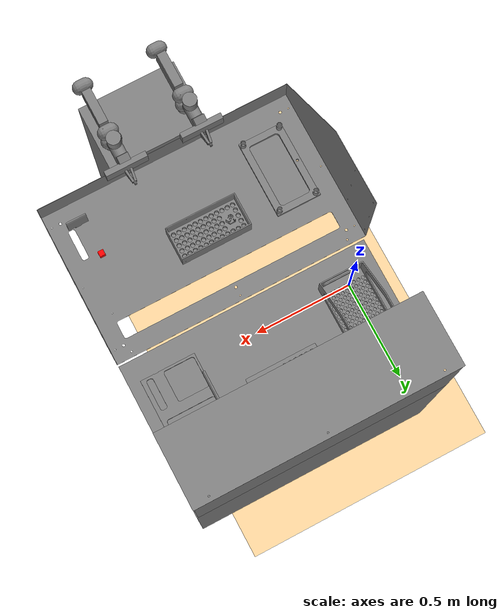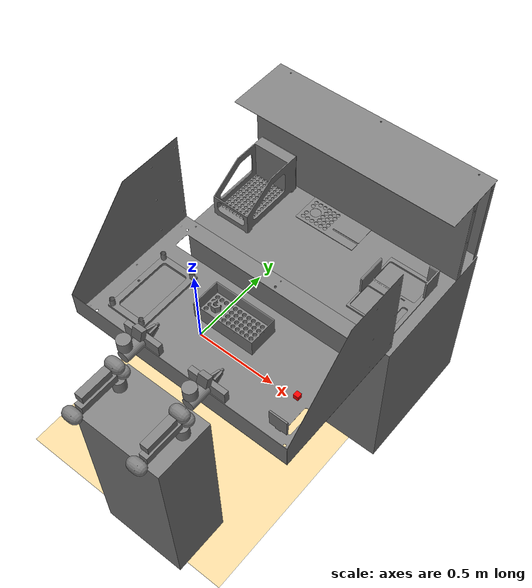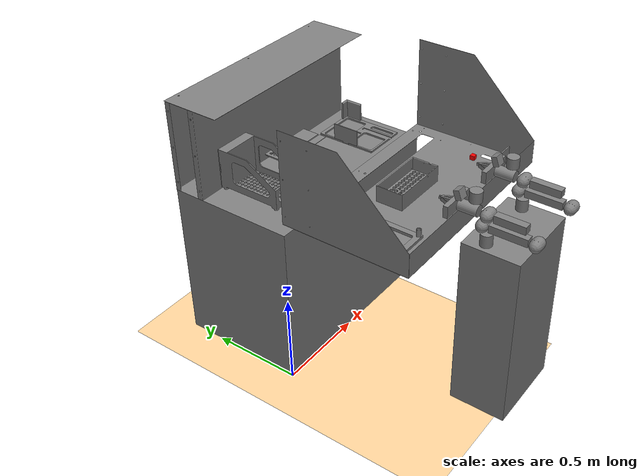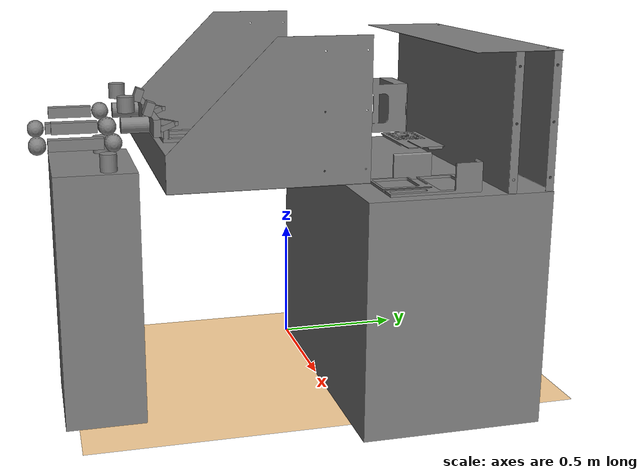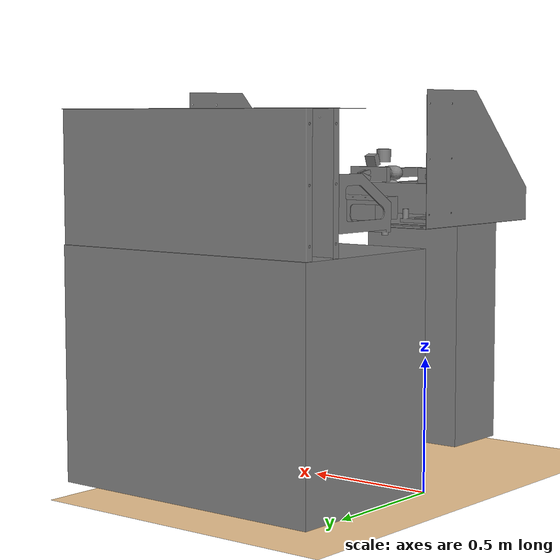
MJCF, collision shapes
<mujoco model="JONY_SOFI">

    <include file="wxai_follower_left.xml"/>
    <include file="wxai_follower_right.xml"/>
    <compiler angle="radian" meshdir="meshes" texturedir="" autolimits="true" eulerseq="XYZ"/>
    <asset>
        <mesh name="Table_Assy_Side_Plates_Right" file="Table_Assy_Side_Plates.stl" scale="0.001 0.001 0.001" />
        <mesh name="Table_Assy_Front_Weld_Plate" file="Table_Assy_Front_Weld_Plate.stl" scale="0.001 0.001 0.001" />
        <mesh name="Table_Assy_Top_Weld_Plate" file="Table_Assy_Top_Weld_Plate.stl" scale="0.001 0.001 0.001" />
        <mesh name="Table_Assy_Top_Panel" file="Table_Assy_Top_Panel.stl" scale="0.001 0.001 0.001" />
        <mesh name="Table_Assy_Rear_Panel" file="Table_Assy_Rear_Panel.stl" scale="0.001 0.001 0.001" />
        <mesh name="Table_Assy_Back_Plate_Exhaust" file="Table_Assy_Back_Plate_Exhaust.stl" scale="0.001 0.001 0.001" />
        <mesh name="Table_Assy_Side_Plates_Left" file="Table_Assy_Side_Plates.stl" scale="0.001 0.001 0.001" />
        <mesh name="Table_Assy_bottom_box" file="Table_Assy_bottom_box.stl" scale="0.001 0.001 0.001" />
        <mesh name="Table_Assy_Chute_01" file="Table_Assy_Chute_01.stl" scale="0.001 0.001 0.001" />
        <mesh name="Table_Assy_Chute_02" file="Table_Assy_Chute_02.stl" scale="0.001 0.001 0.001" />
        <mesh name="Table_Assy_Chute_03" file="Table_Assy_Chute_03.stl" scale="0.001 0.001 0.001" />
        <mesh name="Table_Assy_Vibration_Table_Plate" file="Table_Assy_Vibration_Table_Plate.stl" scale="0.001 0.001 0.001" />
        <mesh name="Table_Assy_Vibration_Table_Top_Plate" file="Table_Assy_Vibration_Table_Top_Plate.stl" scale="0.001 0.001 0.001" />
        <mesh name="Table_Assy_Vibration_Table_Cover" file="Table_Assy_Vibration_Table_Cover.stl" scale="0.001 0.001 0.001" />
        <mesh name="Table_Assy_Mail_Spreader_Housing" file="Table_Assy_Mail_Spreader_Housing.stl" scale="0.001 0.001 0.001" />
        <mesh name="Table_Assy_M0_Top_Plate" file="Table_Assy_M0_Top_Plate.stl" scale="0.001 0.001 0.001" />
        <mesh name="Table_Assy_pedestal" file="Table_Assy_pedestal.stl" scale="0.001 0.001 0.001" />
    </asset>
    <worldbody>
        <body name="box" pos="1.0 -0.4375 0.99">
            <joint name="red_box_joint" type="free" frictionloss="0.01"/>
            <inertial pos="0 0 0" mass="0.05" diaginertia="0.002 0.002 0.002"/>
            <geom condim="4" solimp="2 1 0.01" solref="0.01 1" friction="5.0 4 0.01" pos="0 0 0" size="0.0125 0.0125 0.0125" type="box" name="red_box" rgba="1 0 0 1"/>
        </body>
        <light directional="true" pos="-0.5 0.5 3" dir="0 0 -1" />
        <geom pos="0 0 0" size="1 1 1" type="plane" rgba="1 0.83 0.61 0.5" />
        <body name="Table_Assy_bottom_box" pos="0.5755000000000605 0.3473000000001488 0.8999990000000722" euler="1.5707963267948961 2.595146320061305e-14 1.5707963267948952">
            <geom name="Table_Assy_bottom_box_geom" type="mesh" mesh="Table_Assy_bottom_box" pos="0 0 0" euler="0 0 0" />
            <inertial mass="6094.645799999998" pos="-0.6953000000001242 -0.41499900000008083 0.0034999999999523633" fullinertia="1149.5517753099984 917.709417529398 723.8996810894064 -8.04561847010338e-13 -1.011885098422144e-12 -1.1317166151346369e-13" />
            <body name="Table_Assy_Top_Panel" pos="-1.2235545909788924e-13 0.0015009999999182355 -4.7535309022350705e-14" euler="-3.4512664603419266e-30 -6.399296456966153e-29 3.1415926535897922">
                <geom name="Table_Assy_Top_Panel_geom" type="mesh" mesh="Table_Assy_Top_Panel" pos="0 0 0" euler="0 0 0" />
                <inertial mass="8.638872154823748" pos="0.7190215741395722 -0.0692499999999999 -0.0012508128329555876" fullinertia="0.9774087280735442 1.3107669382962617 0.3333614497997832 3.4836552541797617e-16 0.0035484777358658157 4.0782870391147253e-16" />
                <body name="Table_Assy_Side_Plates_Right" pos="1.6342482922482305e-15 1.0000000349918992e-06 1.1525000000000007" euler="-5.845945338624161e-14 1.2246467991473505e-16 0.0">
                    <geom name="Table_Assy_Side_Plates_geom_Right" type="mesh" mesh="Table_Assy_Side_Plates_Right" pos="0 0 0" euler="0 0 0" />
                    <inertial mass="3.3502178875867004" pos="0.6388405733819212 -0.28872222393639935 -0.5747500000000175" fullinertia="0.06425169768167785 0.1107467819837871 0.1749972233337589 -0.02615578684520504 -2.116247646434897e-15 -3.755624807565803e-15" />
                    <body name="Table_Assy_Top_Weld_Plate" pos="-0.18630000000000024 -0.4999999999999672 -1.1525000000000316" euler="-5.860174503637766e-14 -1.224646799147352e-16 -3.141592653589793">
                        <geom name="Table_Assy_Top_Weld_Plate_geom" type="mesh" mesh="Table_Assy_Top_Weld_Plate" pos="0 0 0" euler="0 0 0" />
                        <inertial mass="4.4985571793770145" pos="-0.6945640289089043 0.07074999999999991 0.0015000000000001932" fullinertia="0.4991204499510249 0.5386936217373994 0.039574858745320185 4.424895953323975e-17 -1.0343462673326475e-16 -7.896400763377244e-17" />
                        <body name="Table_Assy_Rear_Panel" pos="-0.015000500000039026 -0.2500000000000023 0.0015000000000000568" euler="3.1415926535897243 -3.2789020283935527e-15 -1.5707963267948966">
                            <geom name="Table_Assy_Rear_Panel_geom" type="mesh" mesh="Table_Assy_Rear_Panel" pos="0 0 0" euler="0 0 0" />
                            <inertial mass="7.256241530272004" pos="-0.06999285631849932 0.6944806568110542 -0.0015160732834409434" fullinertia="0.8782510928163023 1.0292714099498879 0.15124404386700974 -3.9879893758765364e-08 -2.5659790955783006e-05 8.97297484879914e-08" />
                        </body>
                    </body>
                </body>
                <body name="Table_Assy_Side_Plates_Left" pos="1.4210854715202005e-15 9.99999974169441e-07 2.842170943040401e-16" euler="4.66017437726886e-14 1.2246467991473505e-16 0.0">
                    <geom name="Table_Assy_Side_Plates_geom_Left" type="mesh" mesh="Table_Assy_Side_Plates_Left" pos="0 0 0" euler="0 0 0" />
                    <inertial mass="3.3502178875867004" pos="0.6388405733819212 -0.28872222393639935 -0.5747500000000176" fullinertia="0.06425169768167607 0.11074678198378576 0.17499722333375622 -0.026155786845205708 -1.6391508181145328e-15 -3.8831414227272846e-15" />
                    <body name="Table_Assy_Front_Weld_Plate" pos="0.3487999999999999 -0.06370099999997379 2.913225216616411e-15" euler="-1.2449265467706876e-16 4.654001112840015e-14 1.5707963267948966">
                        <geom name="Table_Assy_Front_Weld_Plate_geom" type="mesh" mesh="Table_Assy_Front_Weld_Plate" pos="0 0 0" euler="0 0 0" />
                        <inertial mass="1.7596488000000674" pos="-0.07000000000000003 -0.6937499999999992 0.001499999999999872" fullinertia="0.1942657040915568 0.19664541060383095 0.0023803663805748165 -6.410164538511883e-17 9.713094994293897e-17 7.918656996933371e-17" />
                    </body>
                    <body name="Table_Assy_Back_Plate_Exhaust" pos="-0.34580000000006583 -0.24999999999989966 -0.0015000000000190284" euler="3.141592653589793 -4.598765316290481e-14 -1.5707963267948966">
                        <geom name="Table_Assy_Back_Plate_Exhaust_geom" type="mesh" mesh="Table_Assy_Back_Plate_Exhaust" pos="0 0 0" euler="0 0 0" />
                        <inertial mass="7.23847714972074" pos="0.07000000000005516 -0.6945212312801704 -0.0015000000000114381" fullinertia="0.871759217503979 1.022415953228518 0.1508804347156314 4.8717935802377165e-15 -2.1847117415221623e-13 2.7777826006639775e-16" />
                    </body>
                </body>
                <body name="Table_Assy_Vibration_Table_Plate" pos="0.0671797496661021 1.2789769243681803e-15 -0.3934526870424287" euler="-3.141592653589793 1.570796326794895 0">
                    <geom name="Table_Assy_Vibration_Table_Plate_geom" type="mesh" mesh="Table_Assy_Vibration_Table_Plate" pos="0 0 0" euler="0 0 0" />
                    <inertial mass="0.5560141130264266" pos="-0.0017174812182112515 0.08403090037165499 -0.6945003713058735" fullinertia="0.00952429496345697 0.012758835493488638 0.003437097044428735 -7.897336272851581e-07 1.7628963325757758e-08 -1.3483128515555627e-09" />
                </body>
                <body name="Table_Assy_Mail_Spreader_Housing" pos="-0.02811509086870764 -0.014999999999999859 -0.011423451027591867" euler="-2.6806732293762493e-15 -7.097787474020157e-14 -3.1415926535897922">
                    <geom name="Table_Assy_Mail_Spreader_Housing_geom" type="mesh" mesh="Table_Assy_Mail_Spreader_Housing" pos="0 0 0" euler="0 0 0" />
                    <inertial mass="0.9679744461417281" pos="-0.6945473934186863 0.08053240969431215 -0.005649995800602575" fullinertia="0.01087212481692211 0.01296232842989235 0.0032294985478567026 6.586091191313066e-07 -4.483149662973115e-06 -9.84994673766279e-06" />
                    <body name="Table_Assy_M0_Top_Plate" pos="8.526512829121202e-16 0.07449999999999989 7.105427357601002e-17" euler="3.141592653589793 3.4931790098873376e-30 -3.141592653589793">
                        <geom name="Table_Assy_M0_Top_Plate_geom" type="mesh" mesh="Table_Assy_M0_Top_Plate" pos="0 0 0" euler="0 0 0" />
                        <inertial mass="0.1465485002491547" pos="0.6910338198166185 0.07003468746243091 -0.006178289634212963" fullinertia="0.0013863056088074715 0.0017429196396757571 0.0003593992506941225 -1.8593354955243816e-06 -5.463950548351251e-05 7.606712999386254e-06" />
                    </body>
                </body>
                <body name="Table_Assy_Chute_01" pos="0.08082437029044659 -1.4210854715202004e-16 0.400999999999965" euler="3.1415926535897922 -1.5707963267948946 0">
                    <geom name="Table_Assy_Chute_01_geom" type="mesh" mesh="Table_Assy_Chute_01" pos="0 0 0" euler="0 0 0" />
                    <inertial mass="0.40162002519738565" pos="0.05772619690397901 0.09360286537352258 0.6484517705304826" fullinertia="0.005361750452761825 0.007420254096579313 0.002829995039988406 -0.0004265341319401823 0.000835543411297146 0.0006737716338254691" />
                    <body name="Table_Assy_Chute_02" pos="-0.11450000000000003 0.024999999999999148 -1.0658141036401502e-16" euler="-1.3355885970713252e-15 -1.5707963267948966 0">
                        <geom name="Table_Assy_Chute_02_geom" type="mesh" mesh="Table_Assy_Chute_02" pos="0 0 0" euler="0 0 0" />
                        <inertial mass="0.13589450417228027" pos="0.6944999999999989 0.09839987365202225 0.0035459915582183995" fullinertia="9.509060396251077e-05 0.0002510152481522414 0.0003438571436064908 -2.5784920687517184e-18 -1.5487577024099385e-19 -2.7953203965435524e-07" />
                    </body>
                    <body name="Table_Assy_Chute_03" pos="0.052250197846483104 0.02499999999999986 0.172" euler="3.141592653589793 1.2246467991469063e-16 3.1415926535897905">
                        <geom name="Table_Assy_Chute_03_geom" type="mesh" mesh="Table_Assy_Chute_03" pos="0 0 0" euler="0 0 0" />
                        <inertial mass="0.08184450417228083" pos="-0.0014999999999985546 0.0982192038653607 -0.6895458185926816" fullinertia="5.776613298771882e-05 5.4695778536020676e-05 0.00011110755509358109 1.387012602456787e-17 -6.97001207037056e-18 1.6839673550891387e-07" />
                    </body>
                </body>
            </body>
            <body name="Table_Assy_pedestal" pos="-0.05000000000000021 -9.947598300641404e-16 -3.552713678800501e-16" euler="-6.794064546215964e-29 9.989829047051058e-31 -1.180301514317687e-15">
                <geom name="Table_Assy_pedestal_geom" type="mesh" mesh="Table_Assy_pedestal" pos="0 0 0" euler="0 0 0" />
                <inertial mass="1045.1586555" pos="-1.1948000000001227 -0.4149990000000804 0.003499999999952306" fullinertia="99.82214512470406 25.86924446160875 89.94539583023197 -9.673379707214566e-14 1.0075912062680834e-13 -3.775674878662484e-14" />
            </body>
        </body>
        <body name="Table_Assy_Vibration_Table_Top_Plate" pos="0.182047312957584 0.28012025033392646 0.977700066093412" euler="-1.5707963267948697 -8.073498326871293e-30 -3.1415926535897927">
            <geom name="Table_Assy_Vibration_Table_Top_Plate_geom" type="mesh" mesh="Table_Assy_Vibration_Table_Top_Plate" pos="0 0 0" euler="0 0 0" />
            <inertial mass="1.6515666860958036" pos="-0.001499999999949385 -0.1474318920041807 0.6165682707926011" fullinertia="0.029214441885357267 0.028540995527042923 0.01795837144115288 -6.60940717647265e-15 -7.21118904986594e-15 -0.004676561117027137" />
            <body name="Table_Assy_Vibration_Table_Cover" pos="-7.105427357601002e-17 -0.09250000000000014 -0.17800000000000027" euler="-3.141592653589793 -1.5707963267948963 0">
                <geom name="Table_Assy_Vibration_Table_Cover_geom" type="mesh" mesh="Table_Assy_Vibration_Table_Cover" pos="0 0 0" euler="0 0 0" />
                <inertial mass="0.20545240091701503" pos="0.6994876714226026 0.05964733674038033 -0.0009966140869704541" fullinertia="0.0012723533214168965 0.0005704094333601356 0.0007159203050556839 1.6535157416413207e-05 -9.073985887462761e-07 5.996540858289918e-06" />
            </body>
        </body>
    </worldbody>
</mujoco>

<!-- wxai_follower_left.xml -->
<mujoco model="wxai_follower">
  <compiler angle="radian" meshdir="../meshes" texturedir="../" autolimits="true"/>

  <option integrator="implicitfast"/>

  <default>
    <default class="visual">
      <geom type="mesh" group="2" contype="0" conaffinity="0" material="trossen_black"/>
    </default>
    <default class="collision">
      <geom type="cylinder" group="3" mass="0" density="0"/>
    </default>
  </default>

  <asset>
    <material name="trossen_black" rgba="0.1 0.1 0.1 1"/>

    <mesh name="base_link" file="base_link.stl"/>
    <mesh name="link_1" file="link_1.stl"/>
    <mesh name="link_2" file="link_2.stl"/>
    <mesh name="link_3" file="link_3.stl"/>
    <mesh name="link_4" file="link_4.stl"/>
    <mesh name="link_5" file="link_5.stl"/>
    <mesh name="link_6" file="link_6.stl"/>
    <mesh name="carriage_right" file="carriage_right.stl"/>
    <mesh name="carriage_left" file="carriage_left.stl"/>
    <mesh name="camera_mount_d405" file="camera_mount_d405.stl"/>
    <mesh name="d405" file="d405.stl" scale="0.001 0.001 0.001"/>
    <mesh name="gripper_left" file="gripper_left.stl"/>
    <mesh name="gripper_right" file="gripper_right.stl"/>
  </asset>

  <worldbody>
    <body name="base_link" pos="0.75 -0.847 0.97" quat="0.707 0 0 0.707" gravcomp="1">
      <inertial pos="-0.00014175 -5.228e-05 0.03175177" quat="0.503748 -0.507380 -0.494230 -0.494510" mass="0.45969858" diaginertia="0.000213926 0.000416701 0.000448963"/>
      <geom class="visual" mesh="base_link"/>
      <geom class="collision" type="cylinder" size="0.031 0.0325" pos="0 0 0.0325" quat="1 0 0 0"/>
      <body name="link_1" pos="0 0 0.05725" gravcomp="1">
        <inertial pos="-0.00011075 0.00171176 0.0204459" quat="0.313955 0.305238 -0.643575 0.627752" mass="0.152704" diaginertia="0.000203432 0.000173907 8.3521e-05"/>
        <joint name="joint_0" pos="0 0 0" axis="0 0 1" range="-3.05433 3.05433" armature="0.032" frictionloss="0.1" actuatorgravcomp="true"/>
        <geom class="visual" mesh="link_1"/>
        <body name="link_2" pos="0.02 0 0.04625" gravcomp="1">
          <inertial pos="-0.131215 -0.00292583 0.00021345" quat="-0.00123582 0.706546 -0.00109575 0.707665" mass="1.15316" diaginertia="0.0179449 0.0173612 0.00102628"/>
          <joint name="joint_1" pos="0 0 0" axis="0 1 0" range="0 3.14159" armature="0.032" frictionloss="0.1" actuatorgravcomp="true"/>
          <geom class="visual" mesh="link_2"/>
          <geom class="collision" type="capsule" size="0.031 0.015" pos="0 0 0" quat="1 1 0 0"/>
          <geom class="collision" type="box" size="0.0975 0.02 0.02" pos="-0.131 0 0" quat="1 0 0 0"/>
          <body name="link_3" pos="-0.264 0 0" gravcomp="1">
            <inertial pos="0.180836 -0.0009409 0.0555494" quat="0.0103901 0.669684 -0.0033175 0.742566" mass="0.686666" diaginertia="0.00566898 0.00547578 0.00059316"/>
            <joint name="joint_2" pos="0 0 0" axis="0 -1 0" range="0 2.35619" armature="0.032" frictionloss="0.1" actuatorgravcomp="true"/>
            <geom class="visual" mesh="link_3"/>
            <geom class="collision" type="capsule" size="0.031 0.015" pos="0 0 0" quat="1 1 0 0"/>
            <geom class="collision" type="box" size="0.08 0.02 0.02" pos="0.13 0 0.06" quat="1 0 0 0"/>
            <body name="link_4" pos="0.245 0 0.06" gravcomp="1">
              <inertial pos="0.0579784 0.00027145 0.0588445" quat="0.948688 0.0346237 0.307828 0.0635164" mass="0.457899" diaginertia="0.000670827 0.000661455 0.000288648"/>
              <joint name="joint_3" pos="0 0 0" axis="0 -1 0" range="-1.5708 1.5708" armature="0.0018" frictionloss="0.1" actuatorgravcomp="true"/>
              <geom class="visual" mesh="link_4"/>
              <geom class="collision" type="capsule" size="0.031 0.015" pos="0 0 0" quat="1 1 0 0"/>
              <body name="link_5" pos="0.06775 0 0.0455" gravcomp="1">
                <inertial pos="0.00412447 -1.138e-05 -0.0428318" quat="0.496144 0.502128 0.503595 0.498098" mass="0.366939" diaginertia="0.000320622 0.00026751 0.000189108"/>
                <joint name="joint_4" pos="0 0 0" axis="0 0 -1" range="-1.5708 1.5708" armature="0.0018" frictionloss="0.1" actuatorgravcomp="true"/>
                <geom class="visual" mesh="link_5"/>
                <geom class="collision" type="cylinder" size="0.031 0.028" pos="0 0 0.03" quat="1 0 0 0"/>
                <body name="link_6" pos="0.02895 0 -0.0455" gravcomp="1">
                  <inertial pos="0.046841 0.00145133 0.00895674" quat="0.275854 0.291255 -0.691957 0.600225" mass="0.671874" diaginertia="0.00118316 0.00110863 0.00078309"/>
                  <joint name="joint_5" pos="0 0 0" axis="1 0 0" range="-3.14159 3.14159" armature="0.0018" frictionloss="0.1" actuatorgravcomp="true"/>
                  <geom class="visual" mesh="link_6"/>
                  <geom class="collision" type="cylinder" size="0.029 0.05" pos="0 0 0" quat="1 0 1 0"/>
                  <geom class="collision" type="box" size="0.0125 0.094 0.031" pos="0.0685 0 0" quat="1 0 0 0"/>
                  <!-- End-effector site at gripper tip -->
                  <site name="ee_site" pos="0.156 0 0" size="0.001"/>
                  <geom class="visual" pos="0.012 0 0" quat="1 0 0 0" mesh="camera_mount_d405"/>
                  <geom class="collision" type="box" size="0.0155 0.025 0.025" pos="0.0513206 0 0.0569399" quat="0.984808 0 0.173648 0"/>
                  <geom class="visual" type="box" size="0.0115 0.021 0.021" pos="0.0513206 0 0.0569399" quat="0.984808 0 0.173648 0"/>
                  <site name="camera_color_frame" pos="0.05864 0.009 0.05427" quat="0.9848078 0 0.1736482 0" size="0.005"/>
                  <camera name="cam" pos="0.05864 0.009 0.05427" quat="0.5793 0.4056 -0.4056 -0.5793" mode="fixed" fovy="87"/>
                  <body name="carriage_right" pos="0.0865 -0.023 0" gravcomp="1">
                    <inertial pos="0.00169015 0.00592793 0.00201817" quat="-0.370973 0.740886 -0.0847721 0.553427" mass="0.081271" diaginertia="4.29565e-05 3.87081e-05 2.21528e-05"/>
                    <joint name="right_carriage_joint" pos="0 0 0" axis="0 -1 0" type="slide" range="0 0.044" armature="0.1" frictionloss="0.1" actuatorgravcomp="true"/>
                    <geom class="visual" mesh="carriage_right"/>
                    <geom class="visual" mesh="gripper_right"/>
                    <geom class="collision" type="box" size="0.0275 0.005 0.01" pos="0.0286 0.01436 0.0037" quat="0.99257 -0.00451 0.10246 0.06547"/>
                    <geom class="collision" type="box" size="0.0275 0.005 0.01" pos="0.0285 0.01429 -0.00973" quat="0.98344 0.0133 -0.16893 0.06427"/>
                    <geom class="collision" type="box" size="0.00732 0.00214 0.00767" pos="0.0622 0.02083 -0.00105" quat="1 0 0 0"/>
                  </body>
                  <body name="carriage_left" pos="0.0865 0.023 0" gravcomp="1">
                    <inertial pos="0.00169017 -0.00592796 -0.00365701" quat="-0.0382691 0.628022 -0.255101 0.734198" mass="0.081271" diaginertia="4.21112e-05 3.61943e-05 2.40003e-05"/>
                    <joint name="left_carriage_joint" pos="0 0 0" axis="0 1 0" type="slide" range="0 0.044" armature="0.1" frictionloss="0.1" actuatorgravcomp="true"/>
                    <geom class="visual" mesh="carriage_left"/>
                    <geom class="visual" mesh="gripper_left"/>
                    <geom class="collision" type="box" size="0.0275 0.005 0.01" pos="0.0286 -0.01436 0.0037" quat="0.99257 0.00451 0.10246 -0.06547"/>
                    <geom class="collision" type="box" size="0.0275 0.005 0.01" pos="0.0285 -0.01429 -0.00973" quat="0.98344 -0.0133 -0.16893 -0.06427"/>
                    <geom class="collision" type="box" size="0.00732 0.00214 0.00767" pos="0.0622 -0.02083 -0.00105" quat="1 0 0 0"/>
                  </body>
                </body>
              </body>
            </body>
          </body>
        </body>
      </body>
    </body>
  </worldbody>

  <equality>
    <joint joint1="right_carriage_joint" joint2="left_carriage_joint" polycoef="0 1 0 0 0"/>
  </equality>

  <actuator>
    <position name="joint_0" joint="joint_0" kp="200" kv="10" ctrlrange="-3.05433 3.05433" forcerange="-27 27"/>
    <position name="joint_1" joint="joint_1" kp="200" kv="10" ctrlrange="0 3.14159" forcerange="-27 27"/>
    <position name="joint_2" joint="joint_2" kp="200" kv="10" ctrlrange="0 2.35619" forcerange="-27 27"/>
    <position name="joint_3" joint="joint_3" kp="100" kv="5" ctrlrange="-1.5708 1.5708" forcerange="-7 7"/>
    <position name="joint_4" joint="joint_4" kp="50" kv="5" ctrlrange="-1.5708 1.5708" forcerange="-7 7"/>
    <position name="joint_5" joint="joint_5" kp="50" kv="5" ctrlrange="-3.14159 3.14159" forcerange="-7 7"/>
    <position name="left_gripper" joint="left_carriage_joint" kp="1000" kv="50" ctrlrange="0 0.044" forcerange="-400 400"/>
  </actuator>

  <keyframe>
    <key name="home" qpos="0 0 0 0 0 0 0 0" ctrl="0 0 0 0 0 0 0"/>
  </keyframe>
</mujoco>

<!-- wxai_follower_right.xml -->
<mujoco model="wxai_follower">
  <compiler angle="radian" meshdir="../meshes" texturedir="../" autolimits="true"/>

  <option integrator="implicitfast"/>

  <default>
    <default class="visual_right">
      <geom type="mesh" group="2" contype="0" conaffinity="0" material="trossen_black_right"/>
    </default>
    <default class="collision_right">
      <geom type="cylinder" group="3" mass="0" density="0"/>
    </default>
  </default>

  <asset>
    <material name="trossen_black_right" rgba="0.1 0.1 0.1 1"/>

    <mesh name="base_link_right" file="base_link.stl"/>
    <mesh name="link_1_right" file="link_1.stl"/>
    <mesh name="link_2_right" file="link_2.stl"/>
    <mesh name="link_3_right" file="link_3.stl"/>
    <mesh name="link_4_right" file="link_4.stl"/>
    <mesh name="link_5_right" file="link_5.stl"/>
    <mesh name="link_6_right" file="link_6.stl"/>
    <mesh name="carriage_right_right" file="carriage_right.stl"/>
    <mesh name="carriage_left_right" file="carriage_left.stl"/>
    <mesh name="camera_mount_d405_right_right" file="camera_mount_d405.stl"/>
    <mesh name="d405_right" file="d405.stl" scale="0.001 0.001 0.001"/>
    <mesh name="gripper_left_right" file="gripper_left.stl"/>
    <mesh name="gripper_right_right" file="gripper_right.stl"/>
  </asset>

  <worldbody>
    <body name="base_link_right" pos="0.405 -0.847 0.97" quat="0.707 0 0 0.707" gravcomp="1">
      <inertial pos="-0.00014175 -5.228e-05 0.03175177" quat="0.503748 -0.507380 -0.494230 -0.494510" mass="0.45969858" diaginertia="0.000213926 0.000416701 0.000448963"/>
      <geom class="visual_right" mesh="base_link_right"/>
      <geom class="collision_right" type="cylinder" size="0.031 0.0325" pos="0 0 0.0325" quat="1 0 0 0"/>
      <body name="link_1_right" pos="0 0 0.05725" gravcomp="1">
        <inertial pos="-0.00011075 0.00171176 0.0204459" quat="0.313955 0.305238 -0.643575 0.627752" mass="0.152704" diaginertia="0.000203432 0.000173907 8.3521e-05"/>
        <joint name="joint_0_right" pos="0 0 0" axis="0 0 1" range="-3.05433 3.05433" armature="0.032" frictionloss="0.1" actuatorgravcomp="true"/>
        <geom class="visual_right" mesh="link_1_right"/>
        <body name="link_2_right" pos="0.02 0 0.04625" gravcomp="1">
          <inertial pos="-0.131215 -0.00292583 0.00021345" quat="-0.00123582 0.706546 -0.00109575 0.707665" mass="1.15316" diaginertia="0.0179449 0.0173612 0.00102628"/>
          <joint name="joint_1_right" pos="0 0 0" axis="0 1 0" range="0 3.14159" armature="0.032" frictionloss="0.1" actuatorgravcomp="true"/>
          <geom class="visual_right" mesh="link_2_right"/>
          <geom class="collision_right" type="capsule" size="0.031 0.015" pos="0 0 0" quat="1 1 0 0"/>
          <geom class="collision_right" type="box" size="0.0975 0.02 0.02" pos="-0.131 0 0" quat="1 0 0 0"/>
          <body name="link_3_right" pos="-0.264 0 0" gravcomp="1">
            <inertial pos="0.180836 -0.0009409 0.0555494" quat="0.0103901 0.669684 -0.0033175 0.742566" mass="0.686666" diaginertia="0.00566898 0.00547578 0.00059316"/>
            <joint name="joint_2_right" pos="0 0 0" axis="0 -1 0" range="0 2.35619" armature="0.032" frictionloss="0.1" actuatorgravcomp="true"/>
            <geom class="visual_right" mesh="link_3_right"/>
            <geom class="collision_right" type="capsule" size="0.031 0.015" pos="0 0 0" quat="1 1 0 0"/>
            <geom class="collision_right" type="box" size="0.08 0.02 0.02" pos="0.13 0 0.06" quat="1 0 0 0"/>
            <body name="link_4_right" pos="0.245 0 0.06" gravcomp="1">
              <inertial pos="0.0579784 0.00027145 0.0588445" quat="0.948688 0.0346237 0.307828 0.0635164" mass="0.457899" diaginertia="0.000670827 0.000661455 0.000288648"/>
              <joint name="joint_3_right" pos="0 0 0" axis="0 -1 0" range="-1.5708 1.5708" armature="0.0018" frictionloss="0.1" actuatorgravcomp="true"/>
              <geom class="visual_right" mesh="link_4_right"/>
              <geom class="collision_right" type="capsule" size="0.031 0.015" pos="0 0 0" quat="1 1 0 0"/>
              <body name="link_5_right" pos="0.06775 0 0.0455" gravcomp="1">
                <inertial pos="0.00412447 -1.138e-05 -0.0428318" quat="0.496144 0.502128 0.503595 0.498098" mass="0.366939" diaginertia="0.000320622 0.00026751 0.000189108"/>
                <joint name="joint_4_right" pos="0 0 0" axis="0 0 -1" range="-1.5708 1.5708" armature="0.0018" frictionloss="0.1" actuatorgravcomp="true"/>
                <geom class="visual_right" mesh="link_5_right"/>
                <geom class="collision_right" type="cylinder" size="0.031 0.028" pos="0 0 0.03" quat="1 0 0 0"/>
                <body name="link_6_right" pos="0.02895 0 -0.0455" gravcomp="1">
                  <inertial pos="0.046841 0.00145133 0.00895674" quat="0.275854 0.291255 -0.691957 0.600225" mass="0.671874" diaginertia="0.00118316 0.00110863 0.00078309"/>
                  <joint name="joint_5_right" pos="0 0 0" axis="1 0 0" range="-3.14159 3.14159" armature="0.0018" frictionloss="0.1" actuatorgravcomp="true"/>
                  <geom class="visual_right" mesh="link_6_right"/>
                  <geom class="collision_right" type="cylinder" size="0.029 0.05" pos="0 0 0" quat="1 0 1 0"/>
                  <geom class="collision_right" type="box" size="0.0125 0.094 0.031" pos="0.0685 0 0" quat="1 0 0 0"/>
                  <!-- End-effector site at gripper tip -->
                  <site name="ee_site_right" pos="0.156 0 0" size="0.001"/>
                  <geom class="visual_right" pos="0.012 0 0" quat="1 0 0 0" mesh="camera_mount_d405_right_right"/>
                  <geom class="collision_right" type="box" size="0.0155 0.025 0.025" pos="0.0513206 0 0.0569399" quat="0.984808 0 0.173648 0"/>
                  <geom class="visual_right" type="box" size="0.0115 0.021 0.021" pos="0.0513206 0 0.0569399" quat="0.984808 0 0.173648 0"/>
                  <site name="camera_color_frame_right" pos="0.05864 0.009 0.05427" quat="0.9848078 0 0.1736482 0" size="0.005"/>
                  <camera name="cam_right" pos="0.05864 0.009 0.05427" quat="0.5793 0.4056 -0.4056 -0.5793" mode="fixed" fovy="87"/>
                  <body name="carriage_right_right" pos="0.0865 -0.023 0" gravcomp="1">
                    <inertial pos="0.00169015 0.00592793 0.00201817" quat="-0.370973 0.740886 -0.0847721 0.553427" mass="0.081271" diaginertia="4.29565e-05 3.87081e-05 2.21528e-05"/>
                    <joint name="right_carriage_joint_right" pos="0 0 0" axis="0 -1 0" type="slide" range="0 0.044" armature="0.1" frictionloss="0.1" actuatorgravcomp="true"/>
                    <geom class="visual_right" mesh="carriage_right_right"/>
                    <geom class="visual_right" mesh="gripper_right_right"/>
                    <geom class="collision_right" type="box" size="0.0275 0.005 0.01" pos="0.0286 0.01436 0.0037" quat="0.99257 -0.00451 0.10246 0.06547"/>
                    <geom class="collision_right" type="box" size="0.0275 0.005 0.01" pos="0.0285 0.01429 -0.00973" quat="0.98344 0.0133 -0.16893 0.06427"/>
                    <geom class="collision_right" type="box" size="0.00732 0.00214 0.00767" pos="0.0622 0.02083 -0.00105" quat="1 0 0 0"/>
                  </body>
                  <body name="carriage_left_right" pos="0.0865 0.023 0" gravcomp="1">
                    <inertial pos="0.00169017 -0.00592796 -0.00365701" quat="-0.0382691 0.628022 -0.255101 0.734198" mass="0.081271" diaginertia="4.21112e-05 3.61943e-05 2.40003e-05"/>
                    <joint name="left_carriage_joint_right" pos="0 0 0" axis="0 1 0" type="slide" range="0 0.044" armature="0.1" frictionloss="0.1" actuatorgravcomp="true"/>
                    <geom class="visual_right" mesh="carriage_left_right"/>
                    <geom class="visual_right" mesh="gripper_left_right"/>
                    <geom class="collision_right" type="box" size="0.0275 0.005 0.01" pos="0.0286 -0.01436 0.0037" quat="0.99257 0.00451 0.10246 -0.06547"/>
                    <geom class="collision_right" type="box" size="0.0275 0.005 0.01" pos="0.0285 -0.01429 -0.00973" quat="0.98344 -0.0133 -0.16893 -0.06427"/>
                    <geom class="collision_right" type="box" size="0.00732 0.00214 0.00767" pos="0.0622 -0.02083 -0.00105" quat="1 0 0 0"/>
                  </body>
                </body>
              </body>
            </body>
          </body>
        </body>
      </body>
    </body>
  </worldbody>

  <equality>
    <joint joint1="right_carriage_joint_right" joint2="left_carriage_joint_right" polycoef="0 1 0 0 0"/>
  </equality>

  <actuator>
    <position name="joint_0_right" joint="joint_0_right" kp="200" kv="10" ctrlrange="-3.05433 3.05433" forcerange="-27 27"/>
    <position name="joint_1_right" joint="joint_1_right" kp="200" kv="10" ctrlrange="0 3.14159" forcerange="-27 27"/>
    <position name="joint_2_right" joint="joint_2_right" kp="200" kv="10" ctrlrange="0 2.35619" forcerange="-27 27"/>
    <position name="joint_3_right" joint="joint_3_right" kp="100" kv="5" ctrlrange="-1.5708 1.5708" forcerange="-7 7"/>
    <position name="joint_4_right" joint="joint_4_right" kp="50" kv="5" ctrlrange="-1.5708 1.5708" forcerange="-7 7"/>
    <position name="joint_5_right" joint="joint_5_right" kp="50" kv="5" ctrlrange="-3.14159 3.14159" forcerange="-7 7"/>
    <position name="left_gripper_right" joint="left_carriage_joint_right" kp="1000" kv="50" ctrlrange="0 0.044" forcerange="-400 400"/>
  </actuator>

  <keyframe>
    <key name="home_right" qpos="0 0 0 0 0 0 0 0" ctrl="0 0 0 0 0 0 0"/>
  </keyframe>
</mujoco>
